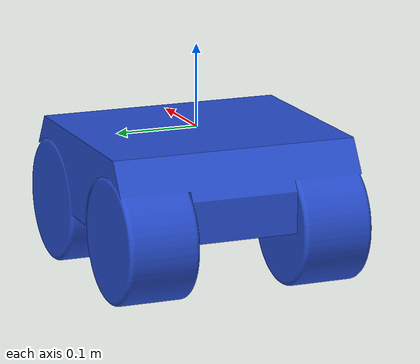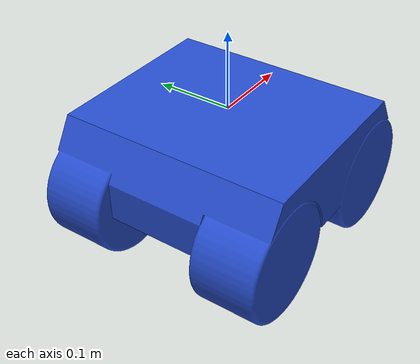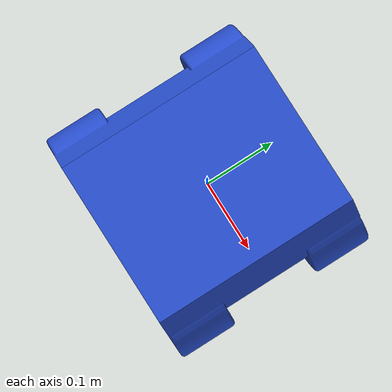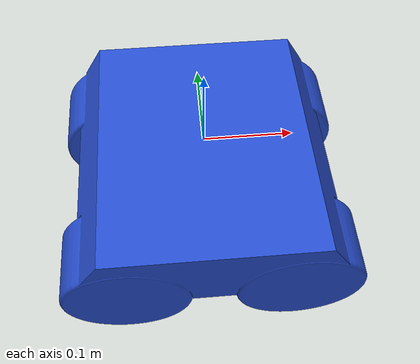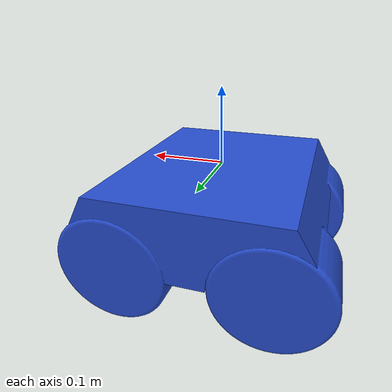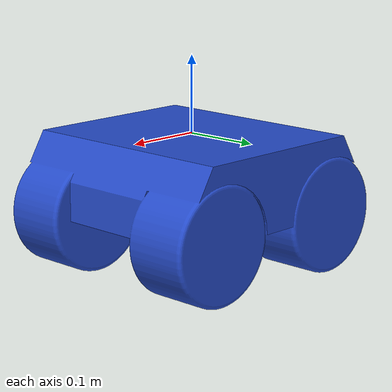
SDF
<?xml version='1.0'?>
<sdf version='1.6'>
  <model name='marker_CAR11'>
    <link name='base_link'>
      <pose frame=''>0 0 0 0 -0 0</pose>
      <inertial>
        <pose frame=''>0 0 -0.072741 0 -0 0</pose>
        <mass>11.8971</mass>
        <inertia>
          <ixx>0.0492436</ixx>
          <ixy>-2.90915e-18</ixy>
          <ixz>-4.33681e-18</ixz>
          <iyy>0.0554288</iyy>
          <iyz>-3.21121e-18</iyz>
          <izz>0.0776736</izz>
        </inertia>
      </inertial>
      <gravity>1</gravity>
      <velocity_decay/>
      <self_collide>0</self_collide>
      <enable_wind>0</enable_wind>
      <kinematic>0</kinematic>
      <visual name='base_link_visual'>
        <pose frame=''>0 0 0 0 -0 0</pose>
        <geometry>
          <mesh>
            <scale>1 1 1</scale>
            <uri>model://marker_CAR11/meshes/base_link.STL</uri>
          </mesh>
        </geometry>
        <material>
          <script>
            <name>Gazebo/Blue</name>
            <uri>file://media/materials/scripts/gazebo.material</uri>
          </script>
          <shader type='pixel'/>
        </material>
        <transparency>0</transparency>
        <cast_shadows>1</cast_shadows>
      </visual>
      <collision name='base_link_collision'>
        <laser_retro>0</laser_retro>
        <max_contacts>10</max_contacts>
        <pose frame=''>0 0 0 0 -0 0</pose>
        <geometry>
          <mesh>
            <uri>model://marker_CAR11/meshes/base_link.STL</uri>
            <scale>1 1 1</scale>
          </mesh>
        </geometry>
        <surface>
          <friction>
            <ode>
              <mu>1</mu>
              <mu2>1</mu2>
              <fdir1>0 0 0</fdir1>
              <slip1>0</slip1>
              <slip2>0</slip2>
            </ode>
            <torsional>
              <coefficient>1</coefficient>
              <patch_radius>0</patch_radius>
              <surface_radius>0</surface_radius>
              <use_patch_radius>1</use_patch_radius>
              <ode>
                <slip>0</slip>
              </ode>
            </torsional>
          </friction>
          <bounce>
            <restitution_coefficient>0</restitution_coefficient>
            <threshold>1e+06</threshold>
          </bounce>
          <contact>
            <collide_without_contact>0</collide_without_contact>
            <collide_without_contact_bitmask>1</collide_without_contact_bitmask>
            <collide_bitmask>1</collide_bitmask>
            <ode>
              <soft_cfm>0</soft_cfm>
              <soft_erp>0.2</soft_erp>
              <kp>1e+13</kp>
              <kd>1</kd>
              <max_vel>0.01</max_vel>
              <min_depth>0</min_depth>
            </ode>
            <bullet>
              <split_impulse>1</split_impulse>
              <split_impulse_penetration_threshold>-0.01</split_impulse_penetration_threshold>
              <soft_cfm>0</soft_cfm>
              <soft_erp>0.2</soft_erp>
              <kp>1e+13</kp>
              <kd>1</kd>
            </bullet>
          </contact>
        </surface>
      </collision>
    </link>
    <static>0</static>
    <allow_auto_disable>1</allow_auto_disable>
  </model>
</sdf>
